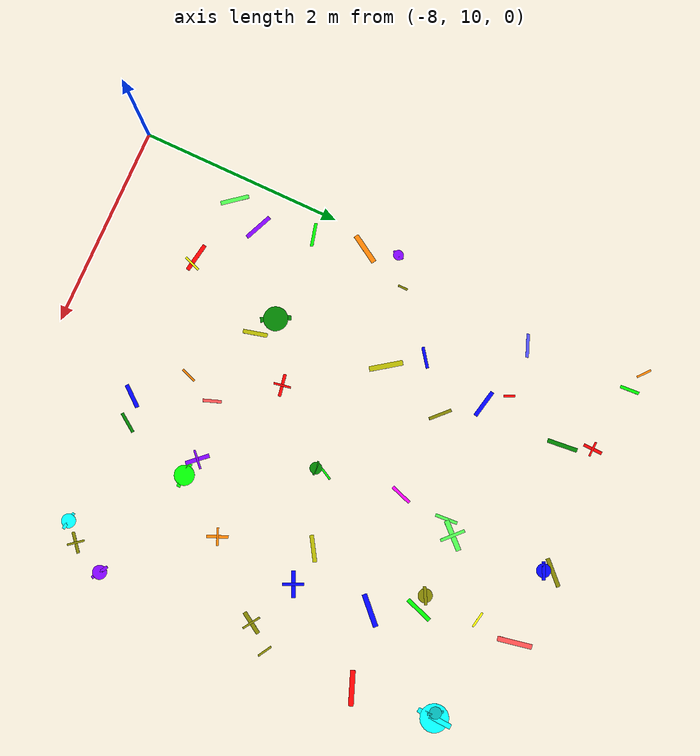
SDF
<sdf version="1.6">
 <world name="default">
  <model name="letter_P_621">
   <static>true</static>
   <pose>-7.77 11.03 0.006 0 0 2.249</pose>
   <link name="link">
    <visual name="visual">
     <geometry><box><size>0.28 0.04 0.002</size></box></geometry>
     <material>
      <ambient>0.3 1.0 0.3 1</ambient>
      <diffuse>0.3 1.0 0.3 1</diffuse>
      <specular>0.1 0.1 0.1 1</specular>
     </material>
    </visual>
   </link>
  </model>
  <model name="letter_Y_622">
   <static>true</static>
   <pose>-7.62 11.35 0.005 0 0 5.870</pose>
   <link name="link">
    <visual name="visual">
     <geometry><box><size>0.29 0.04 0.002</size></box></geometry>
     <material>
      <ambient>0.5 0.0 1.0 1</ambient>
      <diffuse>0.5 0.0 1.0 1</diffuse>
      <specular>0.1 0.1 0.1 1</specular>
     </material>
    </visual>
   </link>
  </model>
  <model name="letter_W_624">
   <static>true</static>
   <pose>-7.86 12.38 0.013 0 0 1.025</pose>
   <link name="link">
    <visual name="visual">
     <geometry><box><size>0.31 0.05 0.002</size></box></geometry>
     <material>
      <ambient>1.0 0.5 0.0 1</ambient>
      <diffuse>1.0 0.5 0.0 1</diffuse>
      <specular>0.1 0.1 0.1 1</specular>
     </material>
    </visual>
   </link>
  </model>
  <model name="letter_Y_625">
   <static>true</static>
   <pose>-7.78 11.87 0.004 0 0 0.249</pose>
   <link name="link">
    <visual name="visual">
     <geometry><box><size>0.23 0.03 0.002</size></box></geometry>
     <material>
      <ambient>0.0 1.0 0.0 1</ambient>
      <diffuse>0.0 1.0 0.0 1</diffuse>
      <specular>0.1 0.1 0.1 1</specular>
     </material>
    </visual>
   </link>
  </model>
  <model name="letter_Q_626">
   <static>true</static>
   <pose>-7.94 12.70 0.012 0 0 1.272</pose>
   <link name="link">
    <visual name="visual">
     <geometry><box><size>0.12 0.02 0.002</size></box></geometry>
     <material>
      <ambient>0.5 0.0 1.0 1</ambient>
      <diffuse>0.5 0.0 1.0 1</diffuse>
      <specular>0.1 0.1 0.1 1</specular>
     </material>
    </visual>
    <visual name="visual2">
     <geometry><cylinder><radius>0.05</radius><length>0.002</length></cylinder></geometry>
     <material><ambient>0.5 0.0 1.0 1</ambient><diffuse>0.5 0.0 1.0 1</diffuse></material>
    </visual>
   </link>
  </model>
  <model name="letter_S_627">
   <static>true</static>
   <pose>-7.67 12.87 0.011 0 0 1.555</pose>
   <link name="link">
    <visual name="visual">
     <geometry><box><size>0.10 0.02 0.002</size></box></geometry>
     <material>
      <ambient>0.5 0.5 0.0 1</ambient>
      <diffuse>0.5 0.5 0.0 1</diffuse>
      <specular>0.1 0.1 0.1 1</specular>
     </material>
    </visual>
   </link>
  </model>
  <model name="letter_R_629">
   <static>true</static>
   <pose>-7.66 14.20 0.006 0 0 3.518</pose>
   <link name="link">
    <visual name="visual">
     <geometry><box><size>0.23 0.03 0.002</size></box></geometry>
     <material>
      <ambient>0.3 0.3 1.0 1</ambient>
      <diffuse>0.3 0.3 1.0 1</diffuse>
      <specular>0.1 0.1 0.1 1</specular>
     </material>
    </visual>
   </link>
  </model>
  <model name="letter_Y_631">
   <static>true</static>
   <pose>-7.68 15.27 0.004 0 0 1.632</pose>
   <link name="link">
    <visual name="visual">
     <geometry><box><size>0.19 0.03 0.002</size></box></geometry>
     <material>
      <ambient>0.0 1.0 0.0 1</ambient>
      <diffuse>0.0 1.0 0.0 1</diffuse>
      <specular>0.1 0.1 0.1 1</specular>
     </material>
    </visual>
   </link>
  </model>
  <model name="letter_R_632">
   <static>true</static>
   <pose>-7.88 15.33 0.012 0 0 5.587</pose>
   <link name="link">
    <visual name="visual">
     <geometry><box><size>0.15 0.02 0.002</size></box></geometry>
     <material>
      <ambient>1.0 0.5 0.0 1</ambient>
      <diffuse>1.0 0.5 0.0 1</diffuse>
      <specular>0.1 0.1 0.1 1</specular>
     </material>
    </visual>
   </link>
  </model>
  <model name="letter_B_700">
   <static>true</static>
   <pose>-7.03 10.92 0.011 0 0 1.209</pose>
   <link name="link">
    <visual name="visual">
     <geometry><box><size>0.17 0.02 0.002</size></box></geometry>
     <material>
      <ambient>1.0 1.0 0.0 1</ambient>
      <diffuse>1.0 1.0 0.0 1</diffuse>
      <specular>0.1 0.1 0.1 1</specular>
     </material>
    </visual>
   </link>
  </model>
  <model name="letter_P_701">
   <static>true</static>
   <pose>-7.10 10.93 0.008 0 0 6.111</pose>
   <link name="link">
    <visual name="visual">
     <geometry><box><size>0.29 0.04 0.002</size></box></geometry>
     <material>
      <ambient>1.0 0.0 0.0 1</ambient>
      <diffuse>1.0 0.0 0.0 1</diffuse>
      <specular>0.1 0.1 0.1 1</specular>
     </material>
    </visual>
   </link>
  </model>
  <model name="letter_P_702">
   <static>true</static>
   <pose>-6.67 11.76 0.003 0 0 4.957</pose>
   <link name="link">
    <visual name="visual">
     <geometry><box><size>0.24 0.04 0.002</size></box></geometry>
     <material>
      <ambient>0.7 0.7 0.0 1</ambient>
      <diffuse>0.7 0.7 0.0 1</diffuse>
      <specular>0.1 0.1 0.1 1</specular>
     </material>
    </visual>
   </link>
  </model>
  <model name="letter_Q_703">
   <static>true</static>
   <pose>-6.88 11.88 0.005 0 0 2.076</pose>
   <link name="link">
    <visual name="visual">
     <geometry><box><size>0.30 0.05 0.002</size></box></geometry>
     <material>
      <ambient>0.0 0.5 0.0 1</ambient>
      <diffuse>0.0 0.5 0.0 1</diffuse>
      <specular>0.1 0.1 0.1 1</specular>
     </material>
    </visual>
    <visual name="visual2">
     <geometry><cylinder><radius>0.12</radius><length>0.002</length></cylinder></geometry>
     <material><ambient>0.0 0.5 0.0 1</ambient><diffuse>0.0 0.5 0.0 1</diffuse></material>
    </visual>
   </link>
  </model>
  <model name="letter_B_704">
   <static>true</static>
   <pose>-7.14 13.35 0.005 0 0 3.778</pose>
   <link name="link">
    <visual name="visual">
     <geometry><box><size>0.21 0.03 0.002</size></box></geometry>
     <material>
      <ambient>0.0 0.0 1.0 1</ambient>
      <diffuse>0.0 0.0 1.0 1</diffuse>
      <specular>0.1 0.1 0.1 1</specular>
     </material>
    </visual>
   </link>
  </model>
  <model name="letter_V_705">
   <static>true</static>
   <pose>-6.91 13.04 0.009 0 0 2.192</pose>
   <link name="link">
    <visual name="visual">
     <geometry><box><size>0.33 0.05 0.002</size></box></geometry>
     <material>
      <ambient>0.7 0.7 0.0 1</ambient>
      <diffuse>0.7 0.7 0.0 1</diffuse>
      <specular>0.1 0.1 0.1 1</specular>
     </material>
    </visual>
   </link>
  </model>
  <model name="letter_S_706">
   <static>true</static>
   <pose>-7.14 14.24 0.006 0 0 1.998</pose>
   <link name="link">
    <visual name="visual">
     <geometry><box><size>0.11 0.02 0.002</size></box></geometry>
     <material>
      <ambient>1.0 0.0 0.0 1</ambient>
      <diffuse>1.0 0.0 0.0 1</diffuse>
      <specular>0.1 0.1 0.1 1</specular>
     </material>
    </visual>
   </link>
  </model>
  <model name="letter_M_707">
   <static>true</static>
   <pose>-6.97 14.05 0.003 0 0 2.941</pose>
   <link name="link">
    <visual name="visual">
     <geometry><box><size>0.28 0.04 0.002</size></box></geometry>
     <material>
      <ambient>0.0 0.0 1.0 1</ambient>
      <diffuse>0.0 0.0 1.0 1</diffuse>
      <specular>0.1 0.1 0.1 1</specular>
     </material>
    </visual>
   </link>
  </model>
  <model name="letter_N_708">
   <static>true</static>
   <pose>-6.70 13.71 0.010 0 0 5.516</pose>
   <link name="link">
    <visual name="visual">
     <geometry><box><size>0.23 0.03 0.002</size></box></geometry>
     <material>
      <ambient>0.5 0.5 0.0 1</ambient>
      <diffuse>0.5 0.5 0.0 1</diffuse>
      <specular>0.1 0.1 0.1 1</specular>
     </material>
    </visual>
   </link>
  </model>
  <model name="letter_M_709">
   <static>true</static>
   <pose>-6.92 14.90 0.007 0 0 4.807</pose>
   <link name="link">
    <visual name="visual">
     <geometry><box><size>0.30 0.04 0.002</size></box></geometry>
     <material>
      <ambient>0.0 0.5 0.0 1</ambient>
      <diffuse>0.0 0.5 0.0 1</diffuse>
      <specular>0.1 0.1 0.1 1</specular>
     </material>
    </visual>
   </link>
  </model>
  <model name="letter_E_710">
   <static>true</static>
   <pose>-7.01 15.18 0.004 0 0 4.688</pose>
   <link name="link">
    <visual name="visual">
     <geometry><box><size>0.19 0.03 0.002</size></box></geometry>
     <material>
      <ambient>1.0 0.0 0.0 1</ambient>
      <diffuse>1.0 0.0 0.0 1</diffuse>
      <specular>0.1 0.1 0.1 1</specular>
     </material>
    </visual>
    <visual name="visual2">
     <pose>0 0 0.001 0 0 1.57</pose>
     <geometry><box><size>0.15 0.02 0.001</size></box></geometry>
     <material><ambient>1.0 0.0 0.0 1</ambient><diffuse>1.0 0.0 0.0 1</diffuse></material>
    </visual>
   </link>
  </model>
  <model name="letter_K_775">
   <static>true</static>
   <pose>-6.03 11.35 0.010 0 0 4.357</pose>
   <link name="link">
    <visual name="visual">
     <geometry><box><size>0.16 0.02 0.002</size></box></geometry>
     <material>
      <ambient>1.0 0.5 0.0 1</ambient>
      <diffuse>1.0 0.5 0.0 1</diffuse>
      <specular>0.1 0.1 0.1 1</specular>
     </material>
    </visual>
   </link>
  </model>
  <model name="letter_B_776">
   <static>true</static>
   <pose>-5.62 10.94 0.007 0 0 0.877</pose>
   <link name="link">
    <visual name="visual">
     <geometry><box><size>0.24 0.04 0.002</size></box></geometry>
     <material>
      <ambient>0.0 0.0 1.0 1</ambient>
      <diffuse>0.0 0.0 1.0 1</diffuse>
      <specular>0.1 0.1 0.1 1</specular>
     </material>
    </visual>
   </link>
  </model>
  <model name="letter_N_777">
   <static>true</static>
   <pose>-5.90 11.66 0.005 0 0 5.057</pose>
   <link name="link">
    <visual name="visual">
     <geometry><box><size>0.18 0.03 0.002</size></box></geometry>
     <material>
      <ambient>1.0 0.3 0.3 1</ambient>
      <diffuse>1.0 0.3 0.3 1</diffuse>
      <specular>0.1 0.1 0.1 1</specular>
     </material>
    </visual>
   </link>
  </model>
  <model name="letter_E_778">
   <static>true</static>
   <pose>-6.32 12.21 0.007 0 0 3.324</pose>
   <link name="link">
    <visual name="visual">
     <geometry><box><size>0.22 0.03 0.002</size></box></geometry>
     <material>
      <ambient>1.0 0.0 0.0 1</ambient>
      <diffuse>1.0 0.0 0.0 1</diffuse>
      <specular>0.1 0.1 0.1 1</specular>
     </material>
    </visual>
    <visual name="visual2">
     <pose>0 0 0.001 0 0 1.57</pose>
     <geometry><box><size>0.17 0.02 0.001</size></box></geometry>
     <material><ambient>1.0 0.0 0.0 1</ambient><diffuse>1.0 0.0 0.0 1</diffuse></material>
    </visual>
   </link>
  </model>
  <model name="letter_O_779">
   <static>true</static>
   <pose>-5.73 12.84 0.010 0 0 3.217</pose>
   <link name="link">
    <visual name="visual">
     <geometry><box><size>0.14 0.02 0.002</size></box></geometry>
     <material>
      <ambient>0.0 0.5 0.0 1</ambient>
      <diffuse>0.0 0.5 0.0 1</diffuse>
      <specular>0.1 0.1 0.1 1</specular>
     </material>
    </visual>
    <visual name="visual2">
     <geometry><cylinder><radius>0.06</radius><length>0.002</length></cylinder></geometry>
     <material><ambient>0.0 0.5 0.0 1</ambient><diffuse>0.0 0.5 0.0 1</diffuse></material>
    </visual>
   </link>
  </model>
  <model name="letter_R_780">
   <static>true</static>
   <pose>-5.72 12.95 0.006 0 0 4.212</pose>
   <link name="link">
    <visual name="visual">
     <geometry><box><size>0.13 0.02 0.002</size></box></geometry>
     <material>
      <ambient>0.0 1.0 0.0 1</ambient>
      <diffuse>0.0 1.0 0.0 1</diffuse>
      <specular>0.1 0.1 0.1 1</specular>
     </material>
    </visual>
   </link>
  </model>
  <model name="letter_R_781">
   <static>true</static>
   <pose>-5.81 14.18 0.005 0 0 4.775</pose>
   <link name="link">
    <visual name="visual">
     <geometry><box><size>0.22 0.03 0.002</size></box></geometry>
     <material>
      <ambient>0.3 1.0 0.3 1</ambient>
      <diffuse>0.3 1.0 0.3 1</diffuse>
      <specular>0.1 0.1 0.1 1</specular>
     </material>
    </visual>
   </link>
  </model>
  <model name="letter_I_782">
   <static>true</static>
   <pose>-5.69 14.30 0.010 0 0 0.815</pose>
   <link name="link">
    <visual name="visual">
     <geometry><box><size>0.31 0.05 0.002</size></box></geometry>
     <material>
      <ambient>0.3 1.0 0.3 1</ambient>
      <diffuse>0.3 1.0 0.3 1</diffuse>
      <specular>0.1 0.1 0.1 1</specular>
     </material>
    </visual>
    <visual name="visual2">
     <pose>0 0 0.001 0 0 1.57</pose>
     <geometry><box><size>0.25 0.03 0.001</size></box></geometry>
     <material><ambient>0.3 1.0 0.3 1</ambient><diffuse>0.3 1.0 0.3 1</diffuse></material>
    </visual>
   </link>
  </model>
  <model name="letter_M_783">
   <static>true</static>
   <pose>-5.84 13.69 0.008 0 0 1.246</pose>
   <link name="link">
    <visual name="visual">
     <geometry><box><size>0.22 0.03 0.002</size></box></geometry>
     <material>
      <ambient>1.0 0.0 1.0 1</ambient>
      <diffuse>1.0 0.0 1.0 1</diffuse>
      <specular>0.1 0.1 0.1 1</specular>
     </material>
    </visual>
   </link>
  </model>
  <model name="letter_O_784">
   <static>true</static>
   <pose>-5.75 15.23 0.009 0 0 3.569</pose>
   <link name="link">
    <visual name="visual">
     <geometry><box><size>0.18 0.03 0.002</size></box></geometry>
     <material>
      <ambient>0.0 0.0 1.0 1</ambient>
      <diffuse>0.0 0.0 1.0 1</diffuse>
      <specular>0.1 0.1 0.1 1</specular>
     </material>
    </visual>
    <visual name="visual2">
     <geometry><cylinder><radius>0.07</radius><length>0.002</length></cylinder></geometry>
     <material><ambient>0.0 0.0 1.0 1</ambient><diffuse>0.0 0.0 1.0 1</diffuse></material>
    </visual>
   </link>
  </model>
  <model name="letter_B_785">
   <static>true</static>
   <pose>-5.77 15.32 0.005 0 0 3.928</pose>
   <link name="link">
    <visual name="visual">
     <geometry><box><size>0.29 0.04 0.002</size></box></geometry>
     <material>
      <ambient>0.5 0.5 0.0 1</ambient>
      <diffuse>0.5 0.5 0.0 1</diffuse>
      <specular>0.1 0.1 0.1 1</specular>
     </material>
    </visual>
   </link>
  </model>
  <model name="letter_R_850">
   <static>true</static>
   <pose>-5.37 11.01 0.012 0 0 4.093</pose>
   <link name="link">
    <visual name="visual">
     <geometry><box><size>0.21 0.03 0.002</size></box></geometry>
     <material>
      <ambient>0.0 0.5 0.0 1</ambient>
      <diffuse>0.0 0.5 0.0 1</diffuse>
      <specular>0.1 0.1 0.1 1</specular>
     </material>
    </visual>
   </link>
  </model>
  <model name="letter_Q_853">
   <static>true</static>
   <pose>-5.14 11.72 0.003 0 0 3.083</pose>
   <link name="link">
    <visual name="visual">
     <geometry><box><size>0.25 0.04 0.002</size></box></geometry>
     <material>
      <ambient>0.0 1.0 0.0 1</ambient>
      <diffuse>0.0 1.0 0.0 1</diffuse>
      <specular>0.1 0.1 0.1 1</specular>
     </material>
    </visual>
    <visual name="visual2">
     <geometry><cylinder><radius>0.10</radius><length>0.002</length></cylinder></geometry>
     <material><ambient>0.0 1.0 0.0 1</ambient><diffuse>0.0 1.0 0.0 1</diffuse></material>
    </visual>
   </link>
  </model>
  <model name="letter_A_854">
   <static>true</static>
   <pose>-5.33 11.77 0.008 0 0 5.457</pose>
   <link name="link">
    <visual name="visual">
     <geometry><box><size>0.24 0.04 0.002</size></box></geometry>
     <material>
      <ambient>0.5 0.0 1.0 1</ambient>
      <diffuse>0.5 0.0 1.0 1</diffuse>
      <specular>0.1 0.1 0.1 1</specular>
     </material>
    </visual>
    <visual name="visual2">
     <pose>0 0 0.001 0 0 1.57</pose>
     <geometry><box><size>0.19 0.02 0.001</size></box></geometry>
     <material><ambient>0.5 0.0 1.0 1</ambient><diffuse>0.5 0.0 1.0 1</diffuse></material>
    </visual>
   </link>
  </model>
  <model name="letter_H_855">
   <static>true</static>
   <pose>-4.74 12.26 0.009 0 0 1.978</pose>
   <link name="link">
    <visual name="visual">
     <geometry><box><size>0.21 0.03 0.002</size></box></geometry>
     <material>
      <ambient>1.0 0.5 0.0 1</ambient>
      <diffuse>1.0 0.5 0.0 1</diffuse>
      <specular>0.1 0.1 0.1 1</specular>
     </material>
    </visual>
    <visual name="visual2">
     <pose>0 0 0.001 0 0 1.57</pose>
     <geometry><box><size>0.17 0.02 0.001</size></box></geometry>
     <material><ambient>1.0 0.5 0.0 1</ambient><diffuse>1.0 0.5 0.0 1</diffuse></material>
    </visual>
   </link>
  </model>
  <model name="letter_S_856">
   <static>true</static>
   <pose>-5.02 13.14 0.011 0 0 3.697</pose>
   <link name="link">
    <visual name="visual">
     <geometry><box><size>0.26 0.04 0.002</size></box></geometry>
     <material>
      <ambient>0.7 0.7 0.0 1</ambient>
      <diffuse>0.7 0.7 0.0 1</diffuse>
      <specular>0.1 0.1 0.1 1</specular>
     </material>
    </visual>
   </link>
  </model>
  <model name="letter_F_857">
   <static>true</static>
   <pose>-4.63 13.11 0.004 0 0 3.575</pose>
   <link name="link">
    <visual name="visual">
     <geometry><box><size>0.26 0.04 0.002</size></box></geometry>
     <material>
      <ambient>0.0 0.0 1.0 1</ambient>
      <diffuse>0.0 0.0 1.0 1</diffuse>
      <specular>0.1 0.1 0.1 1</specular>
     </material>
    </visual>
    <visual name="visual2">
     <pose>0 0 0.001 0 0 1.57</pose>
     <geometry><box><size>0.21 0.03 0.001</size></box></geometry>
     <material><ambient>0.0 0.0 1.0 1</ambient><diffuse>0.0 0.0 1.0 1</diffuse></material>
    </visual>
   </link>
  </model>
  <model name="letter_V_858">
   <static>true</static>
   <pose>-4.91 14.30 0.012 0 0 4.375</pose>
   <link name="link">
    <visual name="visual">
     <geometry><box><size>0.28 0.04 0.002</size></box></geometry>
     <material>
      <ambient>0.0 1.0 0.0 1</ambient>
      <diffuse>0.0 1.0 0.0 1</diffuse>
      <specular>0.1 0.1 0.1 1</specular>
     </material>
    </visual>
   </link>
  </model>
  <model name="letter_S_859">
   <static>true</static>
   <pose>-4.71 13.88 0.005 0 0 0.770</pose>
   <link name="link">
    <visual name="visual">
     <geometry><box><size>0.33 0.05 0.002</size></box></geometry>
     <material>
      <ambient>0.0 0.0 1.0 1</ambient>
      <diffuse>0.0 0.0 1.0 1</diffuse>
      <specular>0.1 0.1 0.1 1</specular>
     </material>
    </visual>
   </link>
  </model>
  <model name="letter_O_860">
   <static>true</static>
   <pose>-5.06 14.30 0.013 0 0 3.637</pose>
   <link name="link">
    <visual name="visual">
     <geometry><box><size>0.18 0.03 0.002</size></box></geometry>
     <material>
      <ambient>0.5 0.5 0.0 1</ambient>
      <diffuse>0.5 0.5 0.0 1</diffuse>
      <specular>0.1 0.1 0.1 1</specular>
     </material>
    </visual>
    <visual name="visual2">
     <geometry><cylinder><radius>0.07</radius><length>0.002</length></cylinder></geometry>
     <material><ambient>0.5 0.5 0.0 1</ambient><diffuse>0.5 0.5 0.0 1</diffuse></material>
    </visual>
   </link>
  </model>
  <model name="letter_V_861">
   <static>true</static>
   <pose>-5.06 14.85 0.008 0 0 6.102</pose>
   <link name="link">
    <visual name="visual">
     <geometry><box><size>0.16 0.02 0.002</size></box></geometry>
     <material>
      <ambient>1.0 1.0 0.0 1</ambient>
      <diffuse>1.0 1.0 0.0 1</diffuse>
      <specular>0.1 0.1 0.1 1</specular>
     </material>
    </visual>
   </link>
  </model>
  <model name="letter_S_862">
   <static>true</static>
   <pose>-5.01 15.26 0.009 0 0 1.758</pose>
   <link name="link">
    <visual name="visual">
     <geometry><box><size>0.34 0.05 0.002</size></box></geometry>
     <material>
      <ambient>1.0 0.3 0.3 1</ambient>
      <diffuse>1.0 0.3 0.3 1</diffuse>
      <specular>0.1 0.1 0.1 1</specular>
     </material>
    </visual>
   </link>
  </model>
  <model name="letter_Q_928">
   <static>true</static>
   <pose>-3.96 11.38 0.012 0 0 5.766</pose>
   <link name="link">
    <visual name="visual">
     <geometry><box><size>0.18 0.03 0.002</size></box></geometry>
     <material>
      <ambient>0.5 0.0 1.0 1</ambient>
      <diffuse>0.5 0.0 1.0 1</diffuse>
      <specular>0.1 0.1 0.1 1</specular>
     </material>
    </visual>
    <visual name="visual2">
     <geometry><cylinder><radius>0.07</radius><length>0.002</length></cylinder></geometry>
     <material><ambient>0.5 0.0 1.0 1</ambient><diffuse>0.5 0.0 1.0 1</diffuse></material>
    </visual>
   </link>
  </model>
  <model name="letter_T_929">
   <static>true</static>
   <pose>-4.12 11.05 0.004 0 0 0.676</pose>
   <link name="link">
    <visual name="visual">
     <geometry><box><size>0.21 0.03 0.002</size></box></geometry>
     <material>
      <ambient>0.5 0.5 0.0 1</ambient>
      <diffuse>0.5 0.5 0.0 1</diffuse>
      <specular>0.1 0.1 0.1 1</specular>
     </material>
    </visual>
    <visual name="visual2">
     <pose>0 0 0.001 0 0 1.57</pose>
     <geometry><box><size>0.17 0.02 0.001</size></box></geometry>
     <material><ambient>0.5 0.5 0.0 1</ambient><diffuse>0.5 0.5 0.0 1</diffuse></material>
    </visual>
   </link>
  </model>
  <model name="letter_Q_930">
   <static>true</static>
   <pose>-4.28 10.90 0.012 0 0 2.988</pose>
   <link name="link">
    <visual name="visual">
     <geometry><box><size>0.18 0.03 0.002</size></box></geometry>
     <material>
      <ambient>0.0 1.0 1.0 1</ambient>
      <diffuse>0.0 1.0 1.0 1</diffuse>
      <specular>0.1 0.1 0.1 1</specular>
     </material>
    </visual>
    <visual name="visual2">
     <geometry><cylinder><radius>0.07</radius><length>0.002</length></cylinder></geometry>
     <material><ambient>0.0 1.0 1.0 1</ambient><diffuse>0.0 1.0 1.0 1</diffuse></material>
    </visual>
   </link>
  </model>
  <model name="letter_L_935">
   <static>true</static>
   <pose>-4.13 12.90 0.003 0 0 1.003</pose>
   <link name="link">
    <visual name="visual">
     <geometry><box><size>0.24 0.04 0.002</size></box></geometry>
     <material>
      <ambient>0.5 0.5 0.0 1</ambient>
      <diffuse>0.5 0.5 0.0 1</diffuse>
      <specular>0.1 0.1 0.1 1</specular>
     </material>
    </visual>
    <visual name="visual2">
     <pose>0 0 0.001 0 0 1.57</pose>
     <geometry><box><size>0.19 0.02 0.001</size></box></geometry>
     <material><ambient>0.5 0.5 0.0 1</ambient><diffuse>0.5 0.5 0.0 1</diffuse></material>
    </visual>
   </link>
  </model>
  <model name="letter_X_936">
   <static>true</static>
   <pose>-3.94 13.13 0.012 0 0 2.612</pose>
   <link name="link">
    <visual name="visual">
     <geometry><box><size>0.15 0.02 0.002</size></box></geometry>
     <material>
      <ambient>0.5 0.5 0.0 1</ambient>
      <diffuse>0.5 0.5 0.0 1</diffuse>
      <specular>0.1 0.1 0.1 1</specular>
     </material>
    </visual>
   </link>
  </model>
  <model name="letter_R_938">
   <static>true</static>
   <pose>-3.97 14.03 0.012 0 0 0.372</pose>
   <link name="link">
    <visual name="visual">
     <geometry><box><size>0.34 0.05 0.002</size></box></geometry>
     <material>
      <ambient>1.0 0.0 0.0 1</ambient>
      <diffuse>1.0 0.0 0.0 1</diffuse>
      <specular>0.1 0.1 0.1 1</specular>
     </material>
    </visual>
   </link>
  </model>
  <model name="letter_O_939">
   <static>true</static>
   <pose>-4.04 14.86 0.009 0 0 4.654</pose>
   <link name="link">
    <visual name="visual">
     <geometry><box><size>0.35 0.05 0.002</size></box></geometry>
     <material>
      <ambient>0.0 1.0 1.0 1</ambient>
      <diffuse>0.0 1.0 1.0 1</diffuse>
      <specular>0.1 0.1 0.1 1</specular>
     </material>
    </visual>
    <visual name="visual2">
     <geometry><cylinder><radius>0.14</radius><length>0.002</length></cylinder></geometry>
     <material><ambient>0.0 1.0 1.0 1</ambient><diffuse>0.0 1.0 1.0 1</diffuse></material>
    </visual>
   </link>
  </model>
  <model name="letter_Q_941">
   <static>true</static>
   <pose>-4.09 14.85 0.011 0 0 5.298</pose>
   <link name="link">
    <visual name="visual">
     <geometry><box><size>0.16 0.02 0.002</size></box></geometry>
     <material>
      <ambient>0.0 0.7 0.7 1</ambient>
      <diffuse>0.0 0.7 0.7 1</diffuse>
      <specular>0.1 0.1 0.1 1</specular>
     </material>
    </visual>
    <visual name="visual2">
     <geometry><cylinder><radius>0.06</radius><length>0.002</length></cylinder></geometry>
     <material><ambient>0.0 0.7 0.7 1</ambient><diffuse>0.0 0.7 0.7 1</diffuse></material>
    </visual>
   </link>
  </model>
 </world>
</sdf>
